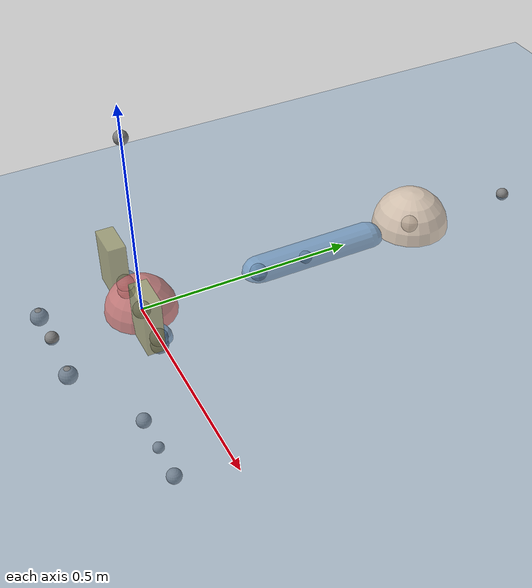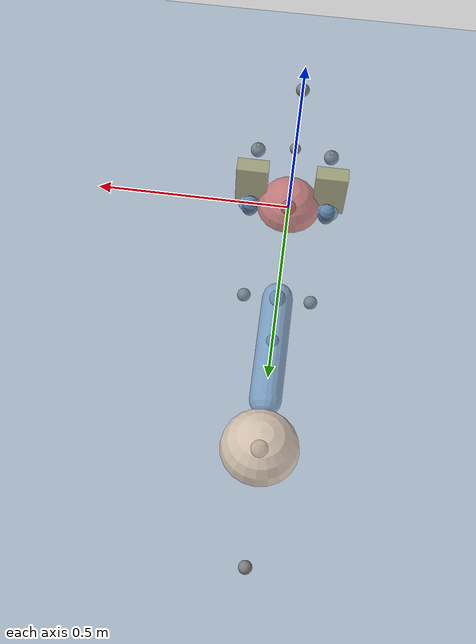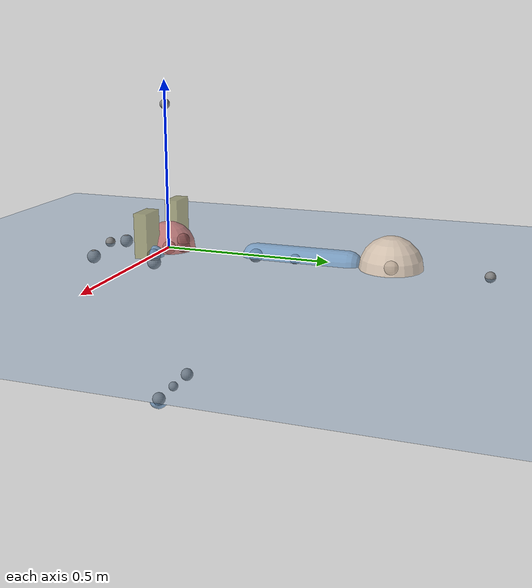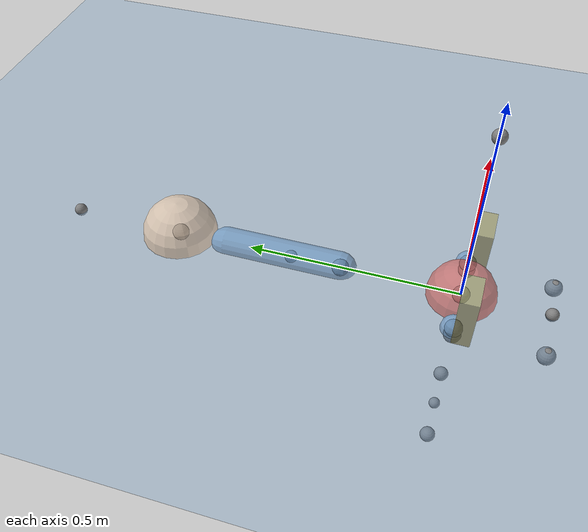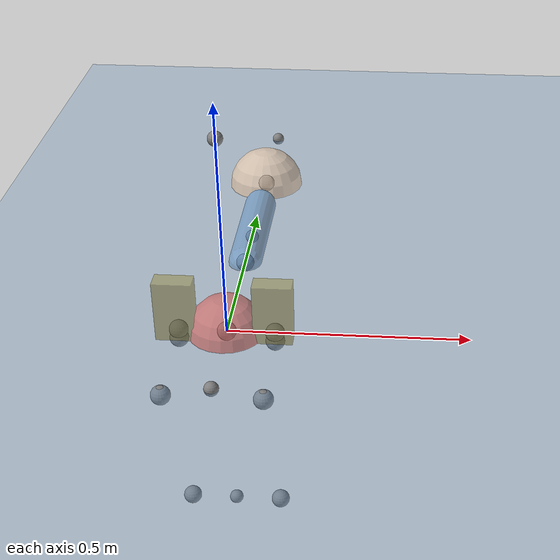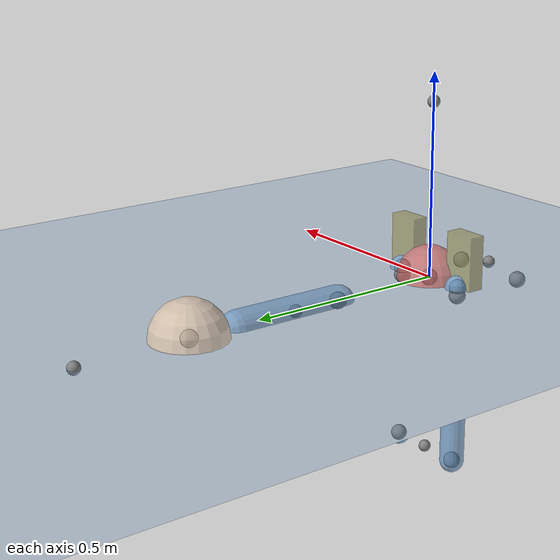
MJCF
<mujoco model="squat_skeleton">
  <compiler angle="radian" coordinate="local" />
  <option gravity="0 -9.81 0" timestep="0.002" />
  <default>
    <joint damping="2.0" armature="0.01" />
    <geom type="capsule" contype="1" conaffinity="1" rgba="0.4 0.6 0.8 1" />
  </default>
  <asset>
    <texture name="floor_tex" type="2d" builtin="checker" width="512" height="512" rgb1="0.9 0.9 0.9" rgb2="0.7 0.7 0.7" />
    <material name="floor_mat" texture="floor_tex" texrepeat="5 5" />
  </asset>
  <worldbody>
    <geom name="floor" type="plane" size="5 5 0.1" pos="0 0 0" material="floor_mat" contype="1" conaffinity="1" />
    <light diffuse="0.8 0.8 0.8" pos="0 4 2" dir="0 -1 0" />
    <body name="pelvis" pos="0 0 0">
      <joint name="pelvis_tx" type="slide" axis="1 0 0" limited="false" />
      <joint name="pelvis_ty" type="slide" axis="0 1 0" limited="false" />
      <joint name="pelvis_tz" type="slide" axis="0 0 1" limited="false" />
      <joint name="pelvis_rx" type="hinge" axis="1 0 0" range="-0.7853981633974483 0.7853981633974483" limited="true" />
      <joint name="pelvis_ry" type="hinge" axis="0 1 0" range="-0.4363323129985824 0.4363323129985824" limited="true" />
      <joint name="pelvis_rz" type="hinge" axis="0 0 1" range="-0.2617993877991494 0.2617993877991494" limited="true" />
      <inertial mass="7.9875" pos="0 0 0" diaginertia="0.020448 0.020448 0.020448" />
      <geom name="pelvis_geom" type="sphere" size="0.08" rgba="0.8 0.4 0.4 0.7" mass="0" />
      <site name="site_pelvis" size="0.02" />
      <body name="trunk" pos="0.0 0.28 0.0">
        <joint name="trunk_rx" type="hinge" axis="1 0 0" range="-0.5235987755982988 1.0471975511965976" limited="true" />
        <joint name="trunk_rz" type="hinge" axis="0 0 1" range="-0.4363323129985824 0.4363323129985824" limited="true" />
        <inertial mass="16.5975" pos="0 0 0" diaginertia="0.005975 0.005975 0.005975" />
        <geom name="trunk_geom" mass="0" type="capsule" fromto="0 0 0 0 0.28 0" size="0.037500000000000006" rgba="0.4 0.6 0.8 0.7" />
        <site name="site_trunk" size="0.02" />
        <body name="head" pos="0.0 0.4 0.0">
          <inertial mass="3.75" pos="0 0 0" diaginertia="0.001350 0.001350 0.001350" />
          <geom name="head_geom" mass="0" type="sphere" size="0.09" rgba="0.9 0.8 0.7 0.7" />
          <site name="site_head" size="0.02" />
        </body>
      </body>
      <body name="L_hip" pos="-0.1 0.0 0.0">
        <joint name="L_hip_rx" type="hinge" axis="1 0 0" range="-0.2617993877991494 2.2689280275926285" limited="true" />
        <joint name="L_hip_ry" type="hinge" axis="0 1 0" range="-0.5235987755982988 0.7853981633974483" limited="true" />
        <joint name="L_hip_rz" type="hinge" axis="0 0 1" range="-0.5235987755982988 0.6981317007977318" limited="true" />
        <inertial mass="6.9225" pos="0 0 0" diaginertia="0.002492 0.002492 0.002492" />
        <geom name="L_hip_geom" mass="0" type="capsule" fromto="0 0 0 0 0 -0.45" size="0.03" rgba="0.4 0.6 0.8 0.7" />
        <site name="site_L_hip" size="0.02" />
        <body name="L_knee" pos="0.0 0.0 -0.45">
          <joint name="L_knee_rx" type="hinge" axis="1 0 0" range="0.0 2.6179938779914944" limited="true" />
          <inertial mass="2.7" pos="0 0 0" diaginertia="0.000972 0.000972 0.000972" />
          <geom name="L_knee_geom" mass="0" type="capsule" fromto="0 0 0 0 0 0.43" size="0.025" rgba="0.4 0.6 0.8 0.7" />
          <site name="site_L_knee" size="0.02" />
          <body name="L_ankle" pos="0.0 0.0 0.43">
            <joint name="L_ankle_rx" type="hinge" axis="1 0 0" range="-0.5235987755982988 0.6981317007977318" limited="true" />
            <joint name="L_ankle_ry" type="hinge" axis="0 1 0" range="-0.3490658503988659 0.3490658503988659" limited="true" />
            <inertial mass="0.675" pos="0 0 0" diaginertia="0.000243 0.000243 0.000243" />
            <geom name="L_ankle_geom" mass="0" type="box" size="0.04 0.02 0.1" pos="0 -0.02 0.05" rgba="0.6 0.6 0.4 0.7" />
            <site name="site_L_ankle" size="0.02" />
            <body name="L_toe" pos="0.0 -0.2 0.0">
              <inertial mass="0.5" pos="0 0 0" diaginertia="0.000180 0.000180 0.000180" />
              <site name="site_L_toe" size="0.02" />
            </body>
          </body>
        </body>
      </body>
      <body name="R_hip" pos="0.1 0.0 0.0">
        <joint name="R_hip_rx" type="hinge" axis="1 0 0" range="-0.2617993877991494 2.2689280275926285" limited="true" />
        <joint name="R_hip_ry" type="hinge" axis="0 1 0" range="-0.7853981633974483 0.5235987755982988" limited="true" />
        <joint name="R_hip_rz" type="hinge" axis="0 0 1" range="-0.6981317007977318 0.5235987755982988" limited="true" />
        <inertial mass="6.9225" pos="0 0 0" diaginertia="0.002492 0.002492 0.002492" />
        <geom name="R_hip_geom" mass="0" type="capsule" fromto="0 0 0 0 0 -0.45" size="0.03" rgba="0.4 0.6 0.8 0.7" />
        <site name="site_R_hip" size="0.02" />
        <body name="R_knee" pos="0.0 0.0 -0.45">
          <joint name="R_knee_rx" type="hinge" axis="1 0 0" range="0.0 2.6179938779914944" limited="true" />
          <inertial mass="2.7" pos="0 0 0" diaginertia="0.000972 0.000972 0.000972" />
          <geom name="R_knee_geom" mass="0" type="capsule" fromto="0 0 0 0 0 0.43" size="0.025" rgba="0.4 0.6 0.8 0.7" />
          <site name="site_R_knee" size="0.02" />
          <body name="R_ankle" pos="0.0 0.0 0.43">
            <joint name="R_ankle_rx" type="hinge" axis="1 0 0" range="-0.5235987755982988 0.6981317007977318" limited="true" />
            <joint name="R_ankle_ry" type="hinge" axis="0 1 0" range="-0.3490658503988659 0.3490658503988659" limited="true" />
            <inertial mass="0.675" pos="0 0 0" diaginertia="0.000243 0.000243 0.000243" />
            <geom name="R_ankle_geom" mass="0" type="box" size="0.04 0.02 0.1" pos="0 -0.02 0.05" rgba="0.6 0.6 0.4 0.7" />
            <site name="site_R_ankle" size="0.02" />
            <body name="R_toe" pos="0.0 -0.2 0.0">
              <inertial mass="0.5" pos="0 0 0" diaginertia="0.000180 0.000180 0.000180" />
              <site name="site_R_toe" size="0.02" />
            </body>
          </body>
        </body>
      </body>
    </body>
    <body name="mocap_pelvis" mocap="true" pos="0.0 0.95 0.0">
      <geom type="sphere" size="0.015" rgba="1 0 0 0.3" contype="0" conaffinity="0" />
      <site name="target_pelvis" size="0.015" />
    </body>
    <body name="mocap_trunk" mocap="true" pos="0.0 0.28 0.0">
      <geom type="sphere" size="0.015" rgba="1 0 0 0.3" contype="0" conaffinity="0" />
      <site name="target_trunk" size="0.015" />
    </body>
    <body name="mocap_head" mocap="true" pos="0.0 0.4 0.0">
      <geom type="sphere" size="0.015" rgba="1 0 0 0.3" contype="0" conaffinity="0" />
      <site name="target_head" size="0.015" />
    </body>
    <body name="mocap_L_hip" mocap="true" pos="-0.1 0.0 0.0">
      <geom type="sphere" size="0.015" rgba="1 0 0 0.3" contype="0" conaffinity="0" />
      <site name="target_L_hip" size="0.015" />
    </body>
    <body name="mocap_R_hip" mocap="true" pos="0.1 0.0 0.0">
      <geom type="sphere" size="0.015" rgba="1 0 0 0.3" contype="0" conaffinity="0" />
      <site name="target_R_hip" size="0.015" />
    </body>
    <body name="mocap_L_knee" mocap="true" pos="0.0 0.0 -0.45">
      <geom type="sphere" size="0.015" rgba="1 0 0 0.3" contype="0" conaffinity="0" />
      <site name="target_L_knee" size="0.015" />
    </body>
    <body name="mocap_R_knee" mocap="true" pos="0.0 0.0 -0.45">
      <geom type="sphere" size="0.015" rgba="1 0 0 0.3" contype="0" conaffinity="0" />
      <site name="target_R_knee" size="0.015" />
    </body>
    <body name="mocap_L_ankle" mocap="true" pos="0.0 0.0 0.43">
      <geom type="sphere" size="0.015" rgba="1 0 0 0.3" contype="0" conaffinity="0" />
      <site name="target_L_ankle" size="0.015" />
    </body>
    <body name="mocap_R_ankle" mocap="true" pos="0.0 0.0 0.43">
      <geom type="sphere" size="0.015" rgba="1 0 0 0.3" contype="0" conaffinity="0" />
      <site name="target_R_ankle" size="0.015" />
    </body>
    <body name="mocap_L_toe" mocap="true" pos="0.0 -0.2 0.0">
      <geom type="sphere" size="0.015" rgba="1 0 0 0.3" contype="0" conaffinity="0" />
      <site name="target_L_toe" size="0.015" />
    </body>
    <body name="mocap_R_toe" mocap="true" pos="0.0 -0.2 0.0">
      <geom type="sphere" size="0.015" rgba="1 0 0 0.3" contype="0" conaffinity="0" />
      <site name="target_R_toe" size="0.015" />
    </body>
  </worldbody>
  <equality>
    <weld body1="pelvis" body2="mocap_pelvis" solref="0.02 1" solimp="0.9 0.95 0.001" active="true" />
    <weld body1="trunk" body2="mocap_trunk" solref="0.02 1" solimp="0.9 0.95 0.001" active="true" />
    <weld body1="head" body2="mocap_head" solref="0.02 1" solimp="0.9 0.95 0.001" active="true" />
    <weld body1="L_hip" body2="mocap_L_hip" solref="0.02 1" solimp="0.9 0.95 0.001" active="true" />
    <weld body1="R_hip" body2="mocap_R_hip" solref="0.02 1" solimp="0.9 0.95 0.001" active="true" />
    <weld body1="L_knee" body2="mocap_L_knee" solref="0.02 1" solimp="0.9 0.95 0.001" active="true" />
    <weld body1="R_knee" body2="mocap_R_knee" solref="0.02 1" solimp="0.9 0.95 0.001" active="true" />
    <weld body1="L_ankle" body2="mocap_L_ankle" solref="0.02 1" solimp="0.9 0.95 0.001" active="true" />
    <weld body1="R_ankle" body2="mocap_R_ankle" solref="0.02 1" solimp="0.9 0.95 0.001" active="true" />
    <weld body1="L_toe" body2="mocap_L_toe" solref="0.02 1" solimp="0.9 0.95 0.001" active="true" />
    <weld body1="R_toe" body2="mocap_R_toe" solref="0.02 1" solimp="0.9 0.95 0.001" active="true" />
  </equality>
  <actuator>
    <position name="act_pelvis_tx" joint="pelvis_tx" kp="100" />
    <position name="act_pelvis_ty" joint="pelvis_ty" kp="100" />
    <position name="act_pelvis_tz" joint="pelvis_tz" kp="100" />
    <position name="act_pelvis_rx" joint="pelvis_rx" kp="100" />
    <position name="act_pelvis_ry" joint="pelvis_ry" kp="100" />
    <position name="act_pelvis_rz" joint="pelvis_rz" kp="100" />
    <position name="act_trunk_rx" joint="trunk_rx" kp="100" />
    <position name="act_trunk_rz" joint="trunk_rz" kp="100" />
    <position name="act_L_hip_rx" joint="L_hip_rx" kp="100" />
    <position name="act_L_hip_ry" joint="L_hip_ry" kp="100" />
    <position name="act_L_hip_rz" joint="L_hip_rz" kp="100" />
    <position name="act_R_hip_rx" joint="R_hip_rx" kp="100" />
    <position name="act_R_hip_ry" joint="R_hip_ry" kp="100" />
    <position name="act_R_hip_rz" joint="R_hip_rz" kp="100" />
    <position name="act_L_knee_rx" joint="L_knee_rx" kp="100" />
    <position name="act_R_knee_rx" joint="R_knee_rx" kp="100" />
    <position name="act_L_ankle_rx" joint="L_ankle_rx" kp="100" />
    <position name="act_L_ankle_ry" joint="L_ankle_ry" kp="100" />
    <position name="act_R_ankle_rx" joint="R_ankle_rx" kp="100" />
    <position name="act_R_ankle_ry" joint="R_ankle_ry" kp="100" />
  </actuator>
</mujoco>
